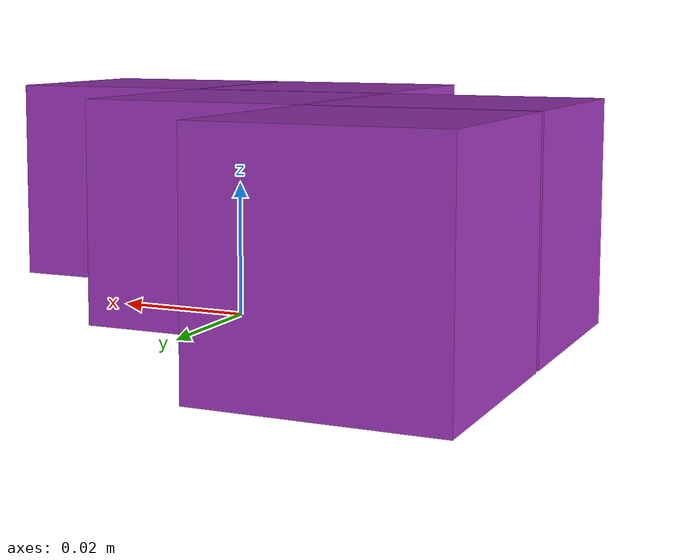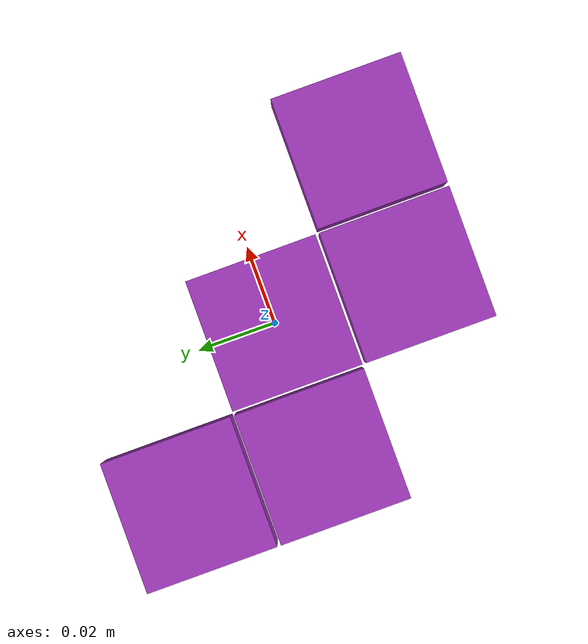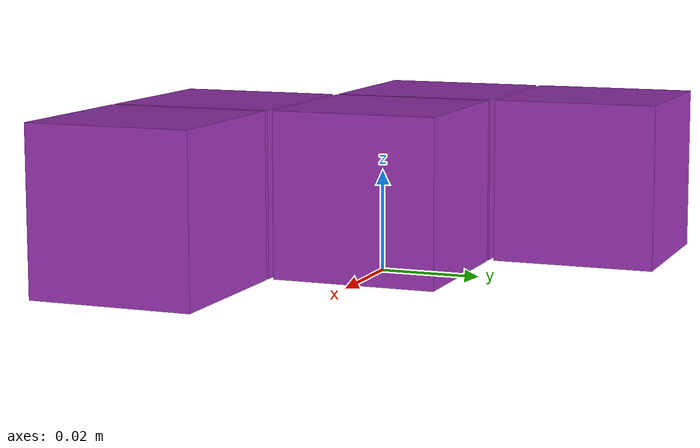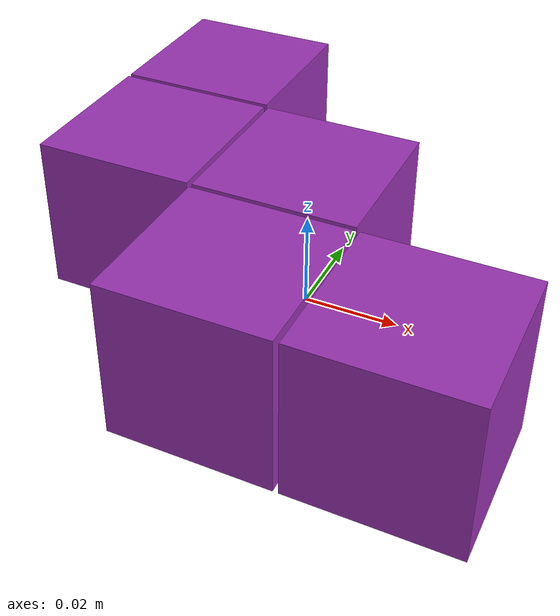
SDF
<?xml version="1.0" ?>
<!-- |    This document was autogenerated by xacro from W.xacro                        | -->
<!-- |    EDITING THIS FILE BY HAND IS NOT RECOMMENDED                                 | -->
<sdf version="1.4" xmlns:xacro="http://www.ros.org/wiki/xacro">
  <model name="pentomino_W">
    <link name="pentomino_W">
      <velocity_decay>
        <linear>0.01</linear>
        <angular>1.0</angular>
      </velocity_decay>
      <visual name="cube_0_0">
        <pose>0.0 0.0 0.0165 0 0 0</pose>
        <geometry>
          <box>
            <size>0.033 0.033 0.033</size>
          </box>
        </geometry>
        <material>
          <script>
            <name>Gazebo/Purple</name>
          </script>
        </material>
      </visual>
      <collision name="cube_0_0">
        <pose>0.0 0.0 0.0165 0 0 0</pose>
        <geometry>
          <box>
            <size>0.033 0.033 0.033</size>
          </box>
        </geometry>
        <surface>
          <bounce>
            <restitution_coefficient>0.0</restitution_coefficient>
          </bounce>
          <friction>
            <ode>
              <mu>1.0</mu>
              <mu2>1.0</mu2>
            </ode>
          </friction>
        </surface>
      </collision>
      <visual name="cube_-1_0">
        <pose>-0.034 0.0 0.0165 0 0 0</pose>
        <geometry>
          <box>
            <size>0.033 0.033 0.033</size>
          </box>
        </geometry>
        <material>
          <script>
            <name>Gazebo/Purple</name>
          </script>
        </material>
      </visual>
      <collision name="cube_-1_0">
        <pose>-0.034 0.0 0.0165 0 0 0</pose>
        <geometry>
          <box>
            <size>0.033 0.033 0.033</size>
          </box>
        </geometry>
        <surface>
          <bounce>
            <restitution_coefficient>0.0</restitution_coefficient>
          </bounce>
          <friction>
            <ode>
              <mu>1.0</mu>
              <mu2>1.0</mu2>
            </ode>
          </friction>
        </surface>
      </collision>
      <visual name="cube_-1_1">
        <pose>-0.034 0.034 0.0165 0 0 0</pose>
        <geometry>
          <box>
            <size>0.033 0.033 0.033</size>
          </box>
        </geometry>
        <material>
          <script>
            <name>Gazebo/Purple</name>
          </script>
        </material>
      </visual>
      <collision name="cube_-1_1">
        <pose>-0.034 0.034 0.0165 0 0 0</pose>
        <geometry>
          <box>
            <size>0.033 0.033 0.033</size>
          </box>
        </geometry>
        <surface>
          <bounce>
            <restitution_coefficient>0.0</restitution_coefficient>
          </bounce>
          <friction>
            <ode>
              <mu>1.0</mu>
              <mu2>1.0</mu2>
            </ode>
          </friction>
        </surface>
      </collision>
      <visual name="cube_0_-1">
        <pose>0.0 -0.034 0.0165 0 0 0</pose>
        <geometry>
          <box>
            <size>0.033 0.033 0.033</size>
          </box>
        </geometry>
        <material>
          <script>
            <name>Gazebo/Purple</name>
          </script>
        </material>
      </visual>
      <collision name="cube_0_-1">
        <pose>0.0 -0.034 0.0165 0 0 0</pose>
        <geometry>
          <box>
            <size>0.033 0.033 0.033</size>
          </box>
        </geometry>
        <surface>
          <bounce>
            <restitution_coefficient>0.0</restitution_coefficient>
          </bounce>
          <friction>
            <ode>
              <mu>1.0</mu>
              <mu2>1.0</mu2>
            </ode>
          </friction>
        </surface>
      </collision>
      <visual name="cube_1_-1">
        <pose>0.034 -0.034 0.0165 0 0 0</pose>
        <geometry>
          <box>
            <size>0.033 0.033 0.033</size>
          </box>
        </geometry>
        <material>
          <script>
            <name>Gazebo/Purple</name>
          </script>
        </material>
      </visual>
      <collision name="cube_1_-1">
        <pose>0.034 -0.034 0.0165 0 0 0</pose>
        <geometry>
          <box>
            <size>0.033 0.033 0.033</size>
          </box>
        </geometry>
        <surface>
          <bounce>
            <restitution_coefficient>0.0</restitution_coefficient>
          </bounce>
          <friction>
            <ode>
              <mu>1.0</mu>
              <mu2>1.0</mu2>
            </ode>
          </friction>
        </surface>
      </collision>
      <inertial name="cube_0_0">
        <pose>0.034 0.034 0.0165 0 0 0</pose>
        <mass>0.2</mass>
        <inertia>
          <ixx>0.02178</ixx>
          <!-- TODO -->
          <iyy>0.02178</iyy>
          <izz>0.02178</izz>
          <ixy>0</ixy>
          <ixz>0</ixz>
          <iyz>0</iyz>
        </inertia>
      </inertial>
    </link>
  </model>
</sdf>
